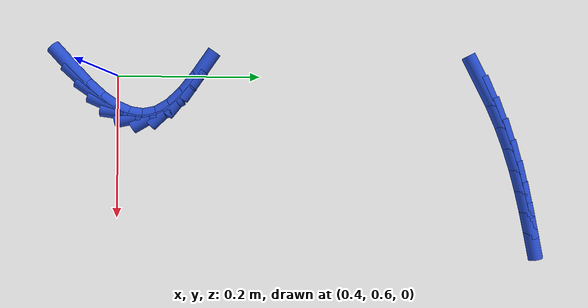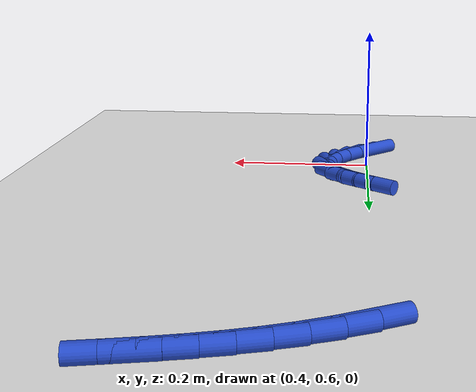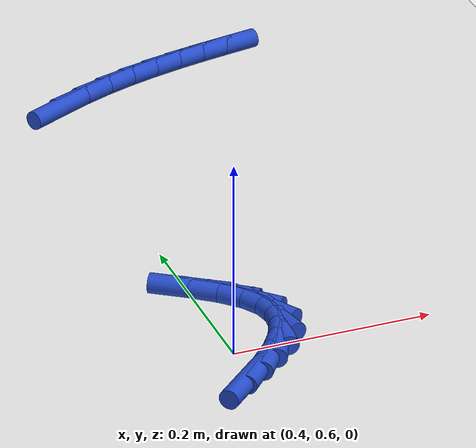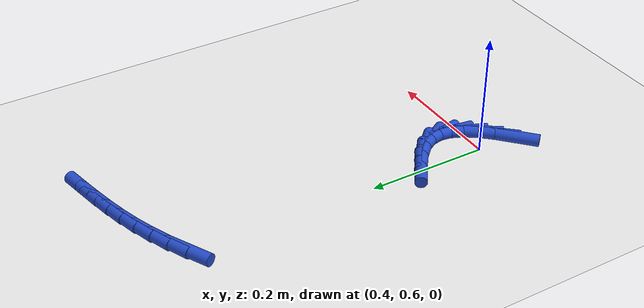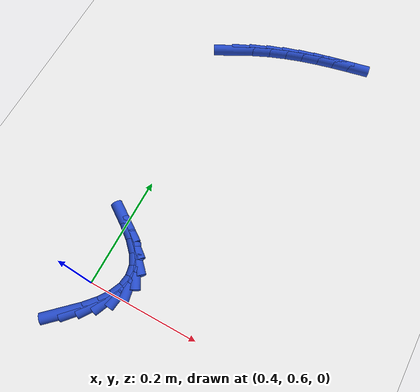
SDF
<sdf version="1.6">
 <world name="default">
  <model name="ground_plane">
   <static>1</static>
   <link name="link">
    <collision name="collision">
     <geometry><plane><normal>0 0 1</normal><size>100 100</size></plane></geometry>
     <surface><friction><ode><mu>100</mu><mu2>50</mu2></ode></friction></surface>
    </collision>
    <visual name="visual">
     <cast_shadows>0</cast_shadows>
     <geometry><plane><normal>0 0 1</normal><size>100 100</size></plane></geometry>
     <material>
      <script><uri>file://media/materials/scripts/gazebo.material</uri><name>Gazebo/WhiteGlow</name></script>
     </material>
    </visual>
   </link>
  </model>
  <model name="line">
   <link name="link_20">
    <pose>0.3899789226744096 0.5385568218963733 0.01 0 1.57 0.7461116596463969</pose>
    <collision name="collision">
     <geometry><cylinder><radius>0.01</radius><length>0.08</length></cylinder></geometry>
    </collision>
    <visual name="visual">
     <material>
      <script><name>Gazebo/Blue</name><uri>file://media/materials/scripts/gazebo.material</uri></script>
     </material>
     <geometry><cylinder><radius>0.01</radius><length>0.08</length></cylinder></geometry>
    </visual>
   </link>
   <link name="link_21">
    <pose>0.4124075088677516 0.5592889034527485 0.01 0 1.57 0.8347316232011791</pose>
    <collision name="collision">
     <geometry><cylinder><radius>0.01</radius><length>0.08</length></cylinder></geometry>
    </collision>
    <visual name="visual">
     <material>
      <script><name>Gazebo/Blue</name><uri>file://media/materials/scripts/gazebo.material</uri></script>
     </material>
     <geometry><cylinder><radius>0.01</radius><length>0.08</length></cylinder></geometry>
    </visual>
   </link>
   <link name="link_22">
    <pose>0.430836364773675 0.5796320706654792 0.01 0 1.57 0.9667020699671817</pose>
    <collision name="collision">
     <geometry><cylinder><radius>0.01</radius><length>0.08</length></cylinder></geometry>
    </collision>
    <visual name="visual">
     <material>
      <script><name>Gazebo/Blue</name><uri>file://media/materials/scripts/gazebo.material</uri></script>
     </material>
     <geometry><cylinder><radius>0.01</radius><length>0.08</length></cylinder></geometry>
    </visual>
   </link>
   <link name="link_23">
    <pose>0.44463152516976046 0.5996202980736268 0.01 0 1.57 1.1616736492888196</pose>
    <collision name="collision">
     <geometry><cylinder><radius>0.01</radius><length>0.08</length></cylinder></geometry>
    </collision>
    <visual name="visual">
     <material>
      <script><name>Gazebo/Blue</name><uri>file://media/materials/scripts/gazebo.material</uri></script>
     </material>
     <geometry><cylinder><radius>0.01</radius><length>0.08</length></cylinder></geometry>
    </visual>
   </link>
   <link name="link_24">
    <pose>0.4531590248335893 0.6192875602162522 0.01 0 1.57 1.4361243365622256</pose>
    <collision name="collision">
     <geometry><cylinder><radius>0.01</radius><length>0.08</length></cylinder></geometry>
    </collision>
    <visual name="visual">
     <material>
      <script><name>Gazebo/Blue</name><uri>file://media/materials/scripts/gazebo.material</uri></script>
     </material>
     <geometry><cylinder><radius>0.01</radius><length>0.08</length></cylinder></geometry>
    </visual>
   </link>
   <link name="link_25">
    <pose>0.455784898542742 0.6386678316324162 0.01 0 1.57 -1.369168255120884</pose>
    <collision name="collision">
     <geometry><cylinder><radius>0.01</radius><length>0.08</length></cylinder></geometry>
    </collision>
    <visual name="visual">
     <material>
      <script><name>Gazebo/Blue</name><uri>file://media/materials/scripts/gazebo.material</uri></script>
     </material>
     <geometry><cylinder><radius>0.01</radius><length>0.08</length></cylinder></geometry>
    </visual>
   </link>
   <link name="link_26">
    <pose>0.4518751810747999 0.6577950868611806 0.01 0 1.57 -1.040964239242349</pose>
    <collision name="collision">
     <geometry><cylinder><radius>0.01</radius><length>0.08</length></cylinder></geometry>
    </collision>
    <visual name="visual">
     <material>
      <script><name>Gazebo/Blue</name><uri>file://media/materials/scripts/gazebo.material</uri></script>
     </material>
     <geometry><cylinder><radius>0.01</radius><length>0.08</length></cylinder></geometry>
    </visual>
   </link>
   <link name="link_27">
    <pose>0.4408006305159704 0.6767035923985502 0.01 0 1.57 -0.8018803755980188</pose>
    <collision name="collision">
     <geometry><cylinder><radius>0.01</radius><length>0.08</length></cylinder></geometry>
    </collision>
    <visual name="visual">
     <material>
      <script><name>Gazebo/Blue</name><uri>file://media/materials/scripts/gazebo.material</uri></script>
     </material>
     <geometry><cylinder><radius>0.01</radius><length>0.08</length></cylinder></geometry>
    </visual>
   </link>
   <link name="link_28">
    <pose>0.4226414506183319 0.6954714669648075 0.01 0 1.57 -0.6704025739768827</pose>
    <collision name="collision">
     <geometry><cylinder><radius>0.01</radius><length>0.08</length></cylinder></geometry>
    </collision>
    <visual name="visual">
     <material>
      <script><name>Gazebo/Blue</name><uri>file://media/materials/scripts/gazebo.material</uri></script>
     </material>
     <geometry><cylinder><radius>0.01</radius><length>0.08</length></cylinder></geometry>
    </visual>
   </link>
   <link name="link_29">
    <pose>0.39893692029679473 0.7142670175699848 0.01 0 1.57 -0.6041358656267266</pose>
    <collision name="collision">
     <geometry><cylinder><radius>0.01</radius><length>0.08</length></cylinder></geometry>
    </collision>
    <visual name="visual">
     <material>
      <script><name>Gazebo/Blue</name><uri>file://media/materials/scripts/gazebo.material</uri></script>
     </material>
     <geometry><cylinder><radius>0.01</radius><length>0.08</length></cylinder></geometry>
    </visual>
   </link>
   <link name="link_46">
    <pose>0.4043806218387051 1.11083970193548 0.01 0 1.57 0.47365859813722133</pose>
    <collision name="collision">
     <geometry><cylinder><radius>0.01</radius><length>0.08</length></cylinder></geometry>
    </collision>
    <visual name="visual">
     <material>
      <script><name>Gazebo/Blue</name><uri>file://media/materials/scripts/gazebo.material</uri></script>
     </material>
     <geometry><cylinder><radius>0.01</radius><length>0.08</length></cylinder></geometry>
    </visual>
   </link>
   <link name="link_47">
    <pose>0.43516333120259965 1.126618214177498 0.01 0 1.57 0.4119890173657231</pose>
    <collision name="collision">
     <geometry><cylinder><radius>0.01</radius><length>0.08</length></cylinder></geometry>
    </collision>
    <visual name="visual">
     <material>
      <script><name>Gazebo/Blue</name><uri>file://media/materials/scripts/gazebo.material</uri></script>
     </material>
     <geometry><cylinder><radius>0.01</radius><length>0.08</length></cylinder></geometry>
    </visual>
   </link>
   <link name="link_48">
    <pose>0.46565143730910025 1.1399414557241312 0.01 0 1.57 0.35549149577950834</pose>
    <collision name="collision">
     <geometry><cylinder><radius>0.01</radius><length>0.08</length></cylinder></geometry>
    </collision>
    <visual name="visual">
     <material>
      <script><name>Gazebo/Blue</name><uri>file://media/materials/scripts/gazebo.material</uri></script>
     </material>
     <geometry><cylinder><radius>0.01</radius><length>0.08</length></cylinder></geometry>
    </visual>
   </link>
   <link name="link_49">
    <pose>0.49581775065805883 1.1511411300884065 0.01 0 1.57 0.3056291293573806</pose>
    <collision name="collision">
     <geometry><cylinder><radius>0.01</radius><length>0.08</length></cylinder></geometry>
    </collision>
    <visual name="visual">
     <material>
      <script><name>Gazebo/Blue</name><uri>file://media/materials/scripts/gazebo.material</uri></script>
     </material>
     <geometry><cylinder><radius>0.01</radius><length>0.08</length></cylinder></geometry>
    </visual>
   </link>
   <link name="link_50">
    <pose>0.5256350817493278 1.16054894078335 0.01 0 1.57 0.2636655343947881</pose>
    <collision name="collision">
     <geometry><cylinder><radius>0.01</radius><length>0.08</length></cylinder></geometry>
    </collision>
    <visual name="visual">
     <material>
      <script><name>Gazebo/Blue</name><uri>file://media/materials/scripts/gazebo.material</uri></script>
     </material>
     <geometry><cylinder><radius>0.01</radius><length>0.08</length></cylinder></geometry>
    </visual>
   </link>
   <link name="link_51">
    <pose>0.5550762410827587 1.1684965913219874 0.01 0 1.57 0.23065893804282758</pose>
    <collision name="collision">
     <geometry><cylinder><radius>0.01</radius><length>0.08</length></cylinder></geometry>
    </collision>
    <visual name="visual">
     <material>
      <script><name>Gazebo/Blue</name><uri>file://media/materials/scripts/gazebo.material</uri></script>
     </material>
     <geometry><cylinder><radius>0.01</radius><length>0.08</length></cylinder></geometry>
    </visual>
   </link>
   <link name="link_52">
    <pose>0.5841140391582038 1.175315785217346 0.01 0 1.57 0.20749162001211907</pose>
    <collision name="collision">
     <geometry><cylinder><radius>0.01</radius><length>0.08</length></cylinder></geometry>
    </collision>
    <visual name="visual">
     <material>
      <script><name>Gazebo/Blue</name><uri>file://media/materials/scripts/gazebo.material</uri></script>
     </material>
     <geometry><cylinder><radius>0.01</radius><length>0.08</length></cylinder></geometry>
    </visual>
   </link>
   <link name="link_53">
    <pose>0.6127212864755149 1.1813382259824512 0.01 0 1.57 0.19491457491919117</pose>
    <collision name="collision">
     <geometry><cylinder><radius>0.01</radius><length>0.08</length></cylinder></geometry>
    </collision>
    <visual name="visual">
     <material>
      <script><name>Gazebo/Blue</name><uri>file://media/materials/scripts/gazebo.material</uri></script>
     </material>
     <geometry><cylinder><radius>0.01</radius><length>0.08</length></cylinder></geometry>
    </visual>
   </link>
  </model>
 </world>
</sdf>
